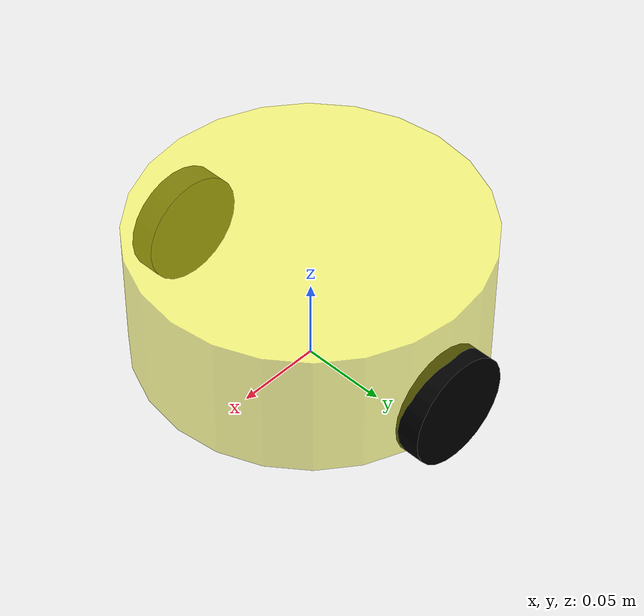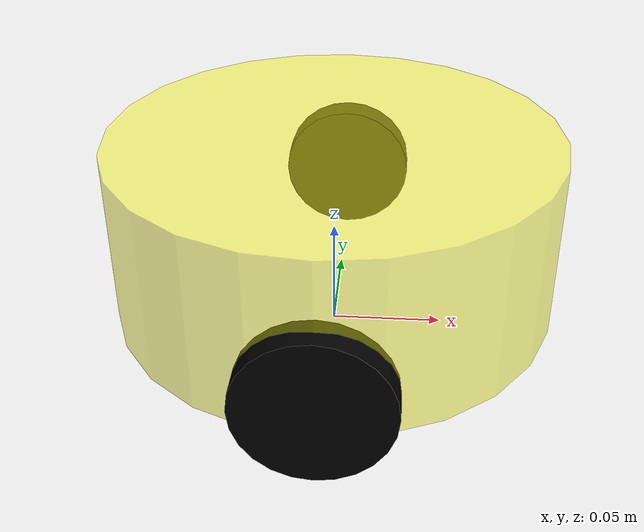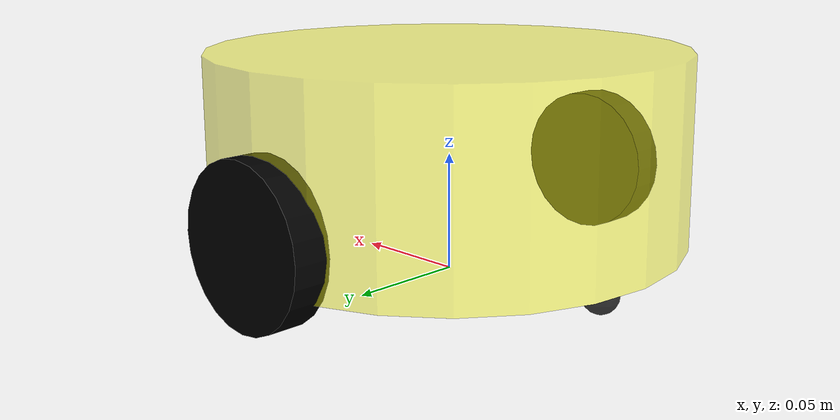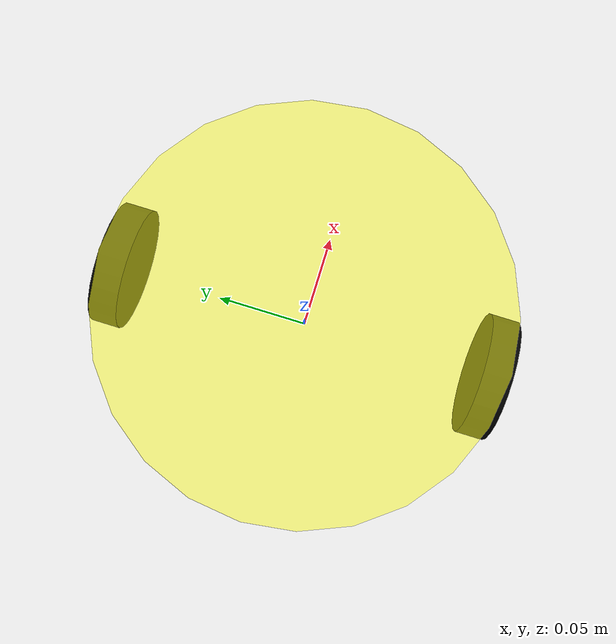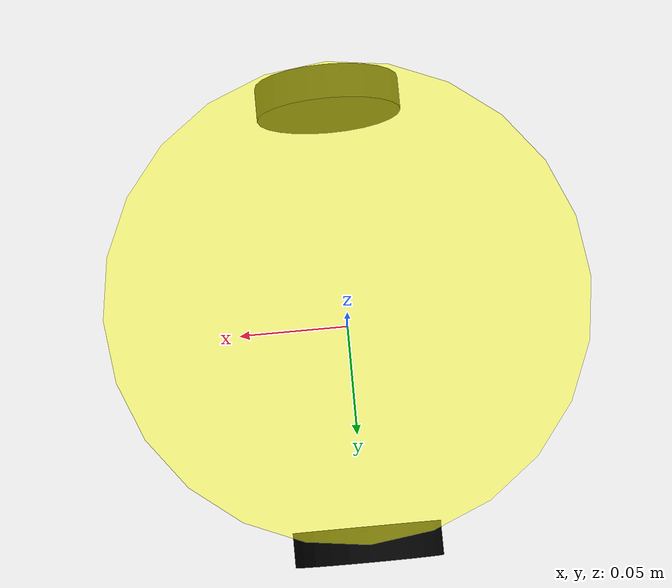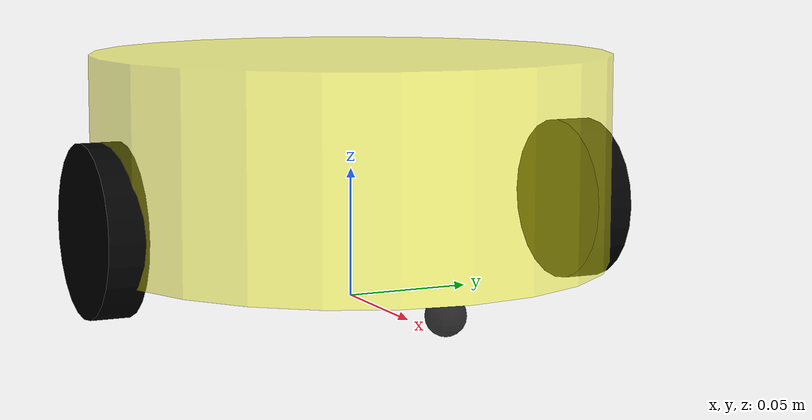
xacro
<robot name="create_robot" xmlns:xacro="http://wiki.ros.org/xacro">
    <xacro:property name="base_footprint_radius" value="0.00001"/>

    <link name="base_footprint">
        <visual>
            <geometry>
                <sphere radius="${base_footprint_radius}"/>
            </geometry>
        </visual>
    </link>

    <xacro:property name="base_link_radius" value="0.1"/>
    <xacro:property name="base_link_length" value="0.08"/>
    <xacro:property name="to_ground" value="0.015"/>
    <xacro:property name="base_joint_z" value="${base_link_length/2+to_ground}"/>

    <link name="base_link">
        <visual>
            <geometry>
                <cylinder radius="${base_link_radius}" length="${base_link_length}"/>
            </geometry>
            <origin xyz="0 0 0" rpy="0 0 0"/>
            <material name="base_link_color">
                <color rgba="1 1 0.1 0.5"/>
            </material>
        </visual>
        <collision>
            <geometry>
                <cylinder radius="${base_link_radius}" length="${base_link_length}"/>
            </geometry>
            <origin xyz="0 0 0" rpy="0 0 0"/>
        </collision>
        <inertial>
            <mass value="1"/>
            <inertia ixx="${(1*(3*base_link_radius*base_link_radius)+base_link_length*base_link_length)/12}" iyy="${(1*(3*base_link_radius*base_link_radius)+base_link_length*base_link_length)/12}" izz="${(1*base_link_radius*base_link_radius)/2}" ixy="0" iyz="0" ixz="0"/>
        </inertial>
    </link>

    <joint name="baseToFootprint" type="fixed">
        <parent link="base_footprint"/>
        <child link="base_link"/>
        <origin xyz="0 0 ${base_joint_z}" rpy="0 0 0"/>
    </joint>

    <link name="left_wheel">
        <visual>
            <geometry>
                <cylinder radius="0.0325" length="0.015"/>
            </geometry>
            <origin xyz="0 0 0" rpy="1.57 0 0"/>
            <material name="left_wheel_color">
                <color rgba="0 0 0 1"/>
            </material>
        </visual>
        <collision>
            <geometry>
                <cylinder radius="0.0325" length="0.015"/>
            </geometry>
            <origin xyz="0 0 0" rpy="1.57 0 0"/>
        </collision>
        <inertial>
            <mass value="0.2"/>
            <inertia ixx="${(0.2*(3*0.0325*0.0325)+0.015*0.015)/12}" iyy="${(0.2*(3*0.0325*0.0325)+0.015*0.015)/12}" izz="${(0.2*0.0325*0.0325)/2}" ixy="0" iyz="0" ixz="0"/>
        </inertial>
    </link>

    <joint name="left_wheelToBase" type="continuous">
        <parent link="base_link"/>
        <child link="left_wheel"/>
        <origin xyz="0 0.1 -0.0225" rpy="0 0 0"/>
        <axis xyz="0 1 0"/>
    </joint>

    <link name="right_wheel">
        <visual>
            <geometry>
                <cylinder radius="0.0325" length="0.015"/>
            </geometry>
            <origin xyz="0 0 0" rpy="1.57 0 0"/>
            <material name="left_wheel_color">
                <color rgba="0 0 0 1"/>
            </material>
        </visual>
        <collision>
            <geometry>
                <cylinder radius="0.0325" length="0.015"/>
            </geometry>
            <origin xyz="0 0 0" rpy="1.57 0 0"/>
        </collision>
        <inertial>
            <mass value="0.2"/>
            <inertia ixx="${(0.2*(3*0.0325*0.0325)+0.015*0.015)/12}" iyy="${(0.2*(3*0.0325*0.0325)+0.015*0.015)/12}" izz="${(0.2*0.0325*0.0325)/2}" ixy="0" iyz="0" ixz="0"/>
        </inertial>
    </link>

    <joint name="right_wheelToBase" type="continuous">
        <parent link="base_link"/>
        <child link="right_wheel"/>
        <origin xyz="0 -0.1 -0.0225" rpy="0 0 0"/>
        <axis xyz="0 1 0"/>
    </joint>

    <link name="front_wheel">
        <visual>
            <geometry>
                <sphere radius="0.0075"/>
            </geometry>
            <origin xyz="0 0 0" rpy="0 0 0"/>
            <material name="front_wheel_color">
                <color rgba="0 0 0 0.8"/>
            </material>
        </visual>
        <collision>
            <geometry>
                <sphere radius="0.0075"/>
            </geometry>
            <origin xyz="0 0 0" rpy="0 0 0"/>
        </collision>
        <inertial>
            <mass value="0.05"/>
            <inertia ixx="${2*0.05*0.0075*0.0075/5}" iyy="${2*0.05*0.0075*0.0075/5}" izz="${2*0.05*0.0075*0.0075/5}" ixy="0" iyz="0" ixz="0"/>
        </inertial>
    </link>

    <joint name="front_wheelToBase" type="continuous">
        <parent link="base_link"/>
        <child link="front_wheel"/>
        <origin xyz="0.08 0 -0.0475" rpy="0 0 0"/>
        <axis xyz="1 1 1"/>
    </joint>

    <link name="back_wheel">
        <visual>
            <geometry>
                <sphere radius="0.0075"/>
            </geometry>
            <origin xyz="0 0 0" rpy="0 0 0"/>
            <material name="front_wheel_color">
                <color rgba="0 0 0 0.8"/>
            </material>
        </visual>
        <collision>
            <geometry>
                <sphere radius="0.0075"/>
            </geometry>
            <origin xyz="0 0 0" rpy="0 0 0"/>
        </collision>
        <inertial>
            <mass value="0.05"/>
            <inertia ixx="${2*0.05*0.0075*0.0075/5}" iyy="${2*0.05*0.0075*0.0075/5}" izz="${2*0.05*0.0075*0.0075/5}" ixy="0" iyz="0" ixz="0"/>
        </inertial>
    </link>
    <joint name="back_wheelToBase" type="continuous">
        <parent link="base_link"/>
        <child link="back_wheel"/>
        <origin xyz="-0.08 0 -0.0475" rpy="0 0 0"/>
        <axis xyz="1 1 1"/>
    </joint>
</robot>
